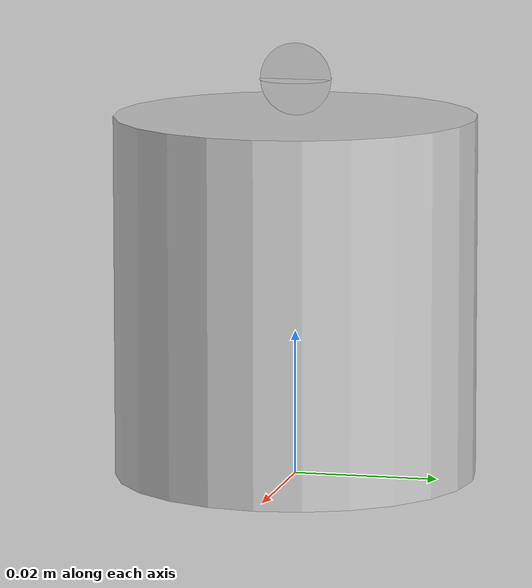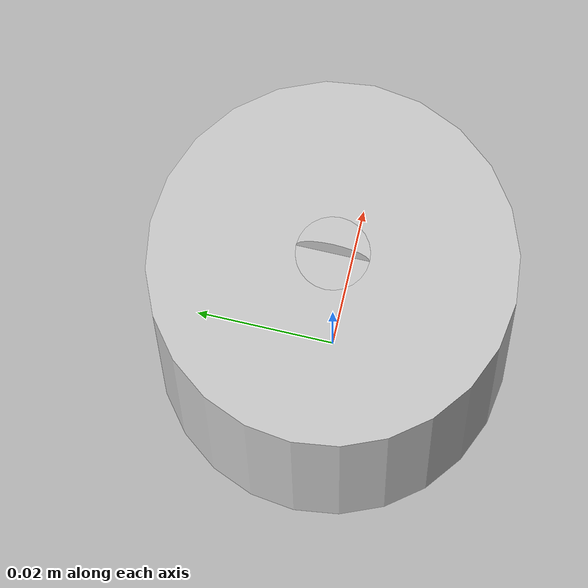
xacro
<?xml version="1.0"?>
<robot name="furuta_pendulum" xmlns:xacro="http://www.ros.org/wiki/xacro">
  <xacro:arg name="use_sim" default="true" />

  <xacro:arg name="m1" default="0.0" />
  <xacro:arg name="m2" default="0.0" />

  <xacro:arg name="l1" default="0.0" />
  <xacro:arg name="l2" default="0.0" />

  <xacro:arg name="L1" default="0.0" />
  <xacro:arg name="L2" default="0.0" />

  <xacro:arg name="J1" default="0.0" />
  <xacro:arg name="J2" default="0.0" />

  <xacro:arg name="b1" default="0.0" />
  <xacro:arg name="b2" default="0.0" />

  <material name="grey">
    <color rgba="0.8 0.8 0.8 1.0" />
  </material>

  <xacro:property name="base_radius" value="0.025" />
  <xacro:property name="L2" value="$(arg L2)" />
  <xacro:property name="base_length" value="${L2+0.05}" />

  <xacro:property name="arm1_radius" value="0.005" />
  <xacro:property name="arm1_length" value="$(arg L1)" />

  <xacro:property name="arm2_radius" value="0.005" />
  <xacro:property name="arm2_length" value="$(arg L2)" />

  <!-- https://www.hindawi.com/journals/jcse/2011/528341/ here this inertias
    are approximated by 0.0, I set them to really low value, to get correct
    visualtizations in rviz -->
  <xacro:property name="arm1_inertia_x" value="0.000001" />
  <xacro:property name="arm2_inertia_z" value="0.000001" />

  <xacro:property name="max_effort" value="0.43" />
  <xacro:property name="max_velocity_joint0" value="22.0" />
  <xacro:property name="max_velocity_joint1" value="100.0" />

  <link name="world" />
  <joint name="world_to_base_joint" type="fixed">
    <origin xyz="0.0 0.0 0.0" rpy="0.0 0.0 0.0" />
    <parent link="world" />
    <child link="base_link" />
  </joint>

  <link name="base_link">
    <visual>
      <origin xyz="0.0 0.0 ${base_length/2.0}" rpy="0.0 0.0 0.0" />
      <geometry>
        <cylinder radius="${base_radius}" length="${base_length}" />
      </geometry>
      <material name="grey" />
    </visual>

    <collision>
      <origin xyz="0.0 0.0 ${base_length/2.0}" rpy="0.0 0.0 0.0" />
      <geometry>
        <cylinder radius="${base_radius}" length="${base_length}" />
      </geometry>
    </collision>

    <inertial>
      <mass value="10.0" />
      <origin xyz="0.0 0.0 0.0" rpy="0.0 0.0 0.0" />
      <inertia ixx="0.1" ixy="0.0" ixz="0.0"
        iyy="0.1" iyz="0.0"
        izz="0.1" />
    </inertial>
  </link>

  <joint name="joint0" type="continuous">
    <origin xyz="0.0 0.0 ${base_length+arm1_radius}" rpy="0.0 0.0 0.0" />
    <parent link="base_link" />
    <child link="arm1" />
    <axis xyz="0 0 1" />
    <dynamics damping="$(arg b1)" />
    <limit effort="${max_effort}" velocity="${max_velocity_joint0}" />
  </joint>

  <link name="arm1">
    <visual>
      <origin xyz="${arm1_length/2.0} 0.0 0.0" rpy="0.0 ${pi/2.0} 0.0" />
      <geometry>
        <cylinder radius="${arm1_radius}" length="${arm1_length}" />
      </geometry>
      <material name="grey" />
    </visual>

    <collision>
      <origin xyz="${arm1_length/2.0} 0.0 0.0" rpy="0.0 ${pi/2.0} 0.0" />
      <geometry>
        <cylinder radius="${arm1_radius}" length="${arm1_length}" />
      </geometry>
    </collision>

    <inertial>
      <mass value="$(arg m1)" />
      <origin xyz="$(arg l1) 0.0 0.0" rpy="0.0 0.0 0.0" />
      <inertia ixx="${arm1_inertia_x}" ixy="0.0" ixz="0.0"
        iyy="$(arg J1)" iyz="0.0"
        izz="$(arg J1)" />
    </inertial>
  </link>

  <joint name="joint1" type="continuous">
    <!-- -pi rotation so that for 0 pendulum is downward -->
    <origin xyz="${arm1_length} 0.0 0.0" rpy="${-pi} 0.0 0.0" />
    <parent link="arm1" />
    <child link="arm2" />
    <axis xyz="1 0 0" />
    <dynamics damping="$(arg b2)" />
    <limit effort="${max_effort}" velocity="${max_velocity_joint1}" />
  </joint>

  <link name="arm2">
    <visual>
      <origin xyz="0.0 0.0 ${arm2_length/2.0}" rpy="0.0 0.0 0.0" />
      <geometry>
        <cylinder radius="${arm2_radius}" length="${arm2_length}" />
      </geometry>
      <material name="grey" />
    </visual>

    <collision>
      <origin xyz="0.0 0.0 ${arm2_length/2.0}" rpy="0.0 0.0 0.0" />
      <geometry>
        <cylinder radius="${arm2_radius}" length="${arm2_length}" />
      </geometry>
    </collision>

    <inertial>
      <mass value="$(arg m2)" />
      <origin xyz="0.0 0.0 $(arg l2)" rpy="0.0 0.0 0.0" />
      <inertia ixx="$(arg J2)" ixy="0.0" ixz="0.0"
        iyy="$(arg J2)" iyz="0.0"
        izz="${arm2_inertia_z}" />
    </inertial>
  </link>

  <ros2_control name="furuta_pendulum" type="system">
    <hardware>
      <xacro:if value="$(arg use_sim)">
        <plugin>ign_ros2_control/IgnitionSystem</plugin>
      </xacro:if>
    </hardware>

    <joint name="joint0">
      <command_interface name="effort">
        <param name="min">${-max_effort}</param>
        <param name="max">${max_effort}</param>
      </command_interface>

      <state_interface name="position" />
      <state_interface name="velocity" />
    </joint>
    <joint name="joint1">
      <command_interface name="effort">
        <param name="min">${-max_effort}</param>
        <param name="max">${max_effort}</param>
      </command_interface>

      <state_interface name="position" />
      <state_interface name="velocity" />
    </joint>
  </ros2_control>

  <xacro:if value="$(arg use_sim)">
    <gazebo>
      <plugin filename="ign_ros2_control-system"
        name="ign_ros2_control::IgnitionROS2ControlPlugin">
        <parameters>$(find furuta_pendulum_gazebo)/config/furuta_pendulum_ros2_control.yaml</parameters>
        <ros>
          <remapping>/forward_effort_controller/commands:=/effort_control</remapping>
        </ros>
      </plugin>
    </gazebo>
  </xacro:if>

</robot>
